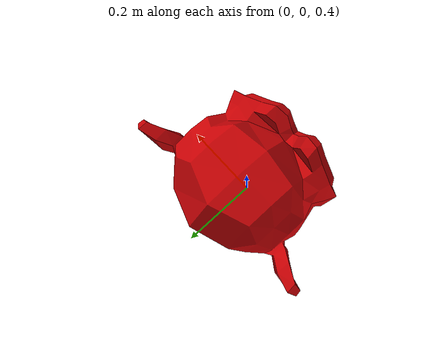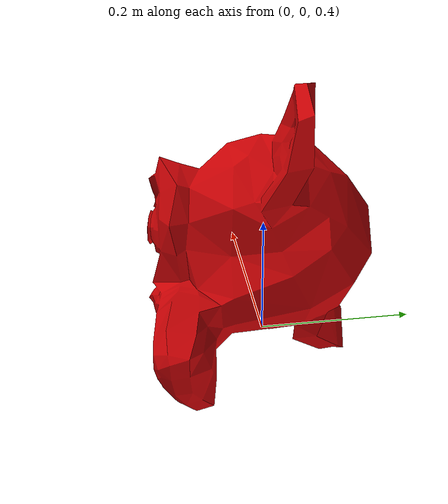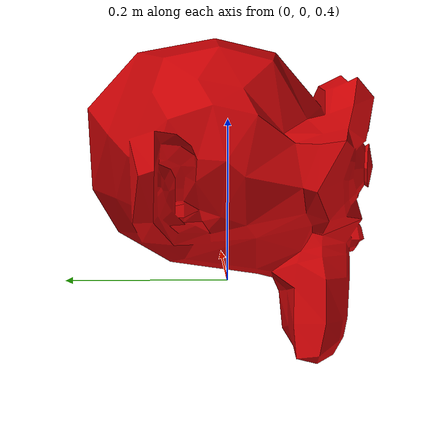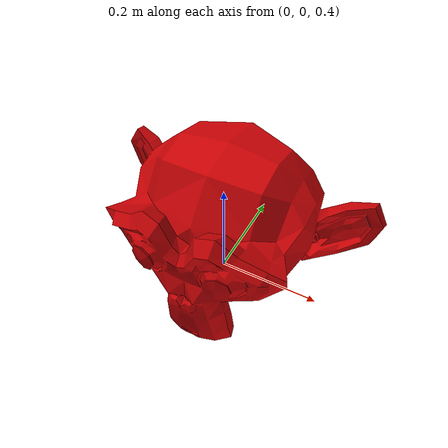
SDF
<?xml version="1.0" encoding="UTF-8"?>

<sdf version='1.6'>
    <model name='monke'>
      <pose frame=''>0 0 0.5 0 0 0</pose>
      <link name='link'>
        <visual name="visual">
          <geometry>
            <mesh>
              <uri>model://monke.dae</uri>
              <scale> 0.2 0.2 0.2 </scale>
            </mesh>
          </geometry>
        </visual>
        <self_collide>0</self_collide>
        <kinematic>0</kinematic>
        <gravity>0</gravity>
      </link>
    </model>
</sdf>
